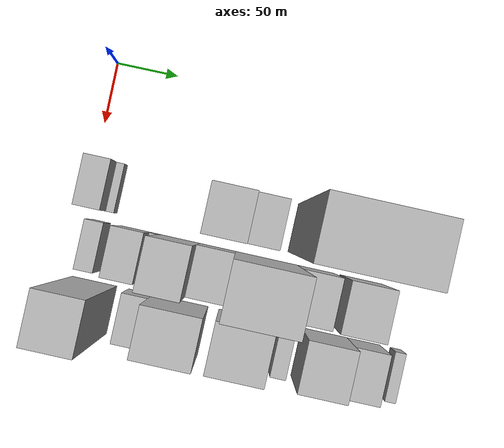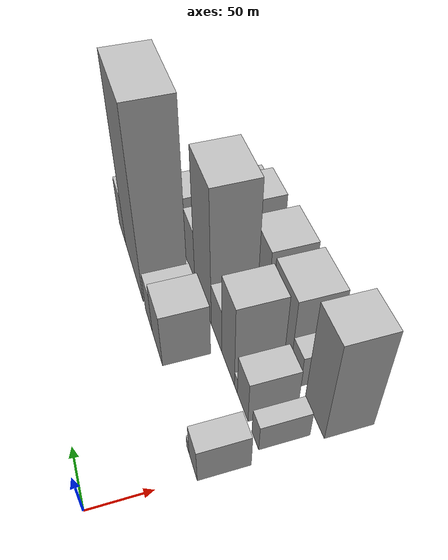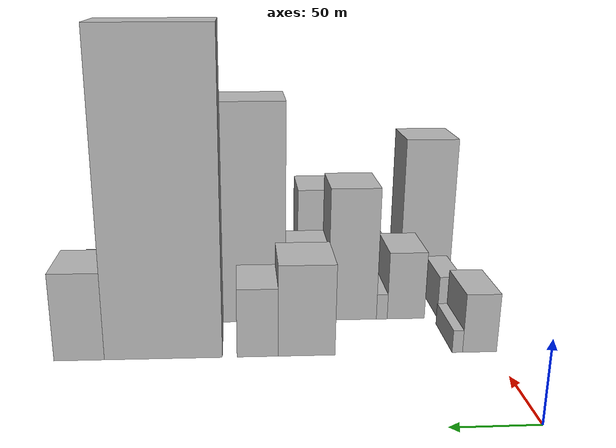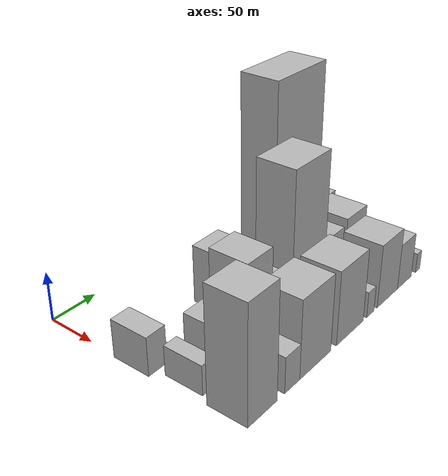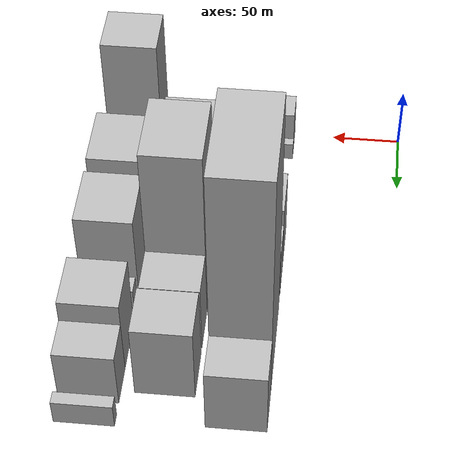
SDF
<sdf version="1.6">
 <world name="default">
  <model name="building_14">
   <static>1</static>
   <pose>100.0000 8.6215 0 0.000000 0.000000 0.000000</pose>
   <link name="link">
    <pose>0 0 19.50 0 0 0</pose>
    <collision name="collision"><geometry><box><size>40.0000 21.5228 39.0000</size></box></geometry></collision>
    <visual name="visual">
     <cast_shadows>0</cast_shadows>
     <geometry><box><size>40.0000 21.5228 39.0000</size></box></geometry>
     <material>
      <script>
       <uri>model://HANNAS_wall/materials/scripts</uri>
       <uri>model://HANNAS_wall/materials/textures</uri>
       <name>vrc/HANNAS_wall</name>
      </script>
     </material>
    </visual>
   </link>
  </model>
  <model name="building_15">
   <static>1</static>
   <pose>100.0000 22.6645 0 0.000000 0.000000 0.000000</pose>
   <link name="link">
    <pose>0 0 7.50 0 0 0</pose>
    <collision name="collision"><geometry><box><size>40.0000 6.5633 15.0000</size></box></geometry></collision>
    <visual name="visual">
     <cast_shadows>0</cast_shadows>
     <geometry><box><size>40.0000 6.5633 15.0000</size></box></geometry>
     <material>
      <script>
       <uri>model://HANNAS_wall/materials/scripts</uri>
       <uri>model://HANNAS_wall/materials/textures</uri>
       <name>vrc/HANNAS_wall</name>
      </script>
     </material>
    </visual>
   </link>
  </model>
  <model name="building_16">
   <static>1</static>
   <pose>100.0000 116.9736 0 0.000000 0.000000 0.000000</pose>
   <link name="link">
    <pose>0 0 30.00 0 0 0</pose>
    <collision name="collision"><geometry><box><size>40.0000 35.3516 60.0000</size></box></geometry></collision>
    <visual name="visual">
     <cast_shadows>0</cast_shadows>
     <geometry><box><size>40.0000 35.3516 60.0000</size></box></geometry>
     <material>
      <script>
       <uri>model://HANNAS_wall/materials/scripts</uri>
       <uri>model://HANNAS_wall/materials/textures</uri>
       <name>vrc/HANNAS_wall</name>
      </script>
     </material>
    </visual>
   </link>
  </model>
  <model name="building_17">
   <static>1</static>
   <pose>100.0000 147.3279 0 0.000000 0.000000 0.000000</pose>
   <link name="link">
    <pose>0 0 22.50 0 0 0</pose>
    <collision name="collision"><geometry><box><size>40.0000 25.3570 45.0000</size></box></geometry></collision>
    <visual name="visual">
     <cast_shadows>0</cast_shadows>
     <geometry><box><size>40.0000 25.3570 45.0000</size></box></geometry>
     <material>
      <script>
       <uri>model://HANNAS_wall/materials/scripts</uri>
       <uri>model://HANNAS_wall/materials/textures</uri>
       <name>vrc/HANNAS_wall</name>
      </script>
     </material>
    </visual>
   </link>
  </model>
  <model name="building_18">
   <static>1</static>
   <pose>100.0000 205.0709 0 0.000000 0.000000 0.000000</pose>
   <link name="link">
    <pose>0 0 100.50 0 0 0</pose>
    <collision name="collision"><geometry><box><size>40.0000 72.1291 201.0000</size></box></geometry></collision>
    <visual name="visual">
     <cast_shadows>0</cast_shadows>
     <geometry><box><size>40.0000 72.1291 201.0000</size></box></geometry>
     <material>
      <script>
       <uri>model://HANNAS_wall/materials/scripts</uri>
       <uri>model://HANNAS_wall/materials/textures</uri>
       <name>vrc/HANNAS_wall</name>
      </script>
     </material>
    </visual>
   </link>
  </model>
  <model name="building_19">
   <static>1</static>
   <pose>100.0000 256.4141 0 0.000000 0.000000 0.000000</pose>
   <link name="link">
    <pose>0 0 28.50 0 0 0</pose>
    <collision name="collision"><geometry><box><size>40.0000 30.5573 57.0000</size></box></geometry></collision>
    <visual name="visual">
     <cast_shadows>0</cast_shadows>
     <geometry><box><size>40.0000 30.5573 57.0000</size></box></geometry>
     <material>
      <script>
       <uri>model://HANNAS_wall/materials/scripts</uri>
       <uri>model://HANNAS_wall/materials/textures</uri>
       <name>vrc/HANNAS_wall</name>
      </script>
     </material>
    </visual>
   </link>
  </model>
  <model name="building_44">
   <static>1</static>
   <pose>149.0000 15.0906 0 0.000000 0.000000 0.000000</pose>
   <link name="link">
    <pose>0 0 15.00 0 0 0</pose>
    <collision name="collision"><geometry><box><size>40.0000 15.2440 30.0000</size></box></geometry></collision>
    <visual name="visual">
     <cast_shadows>0</cast_shadows>
     <geometry><box><size>40.0000 15.2440 30.0000</size></box></geometry>
     <material>
      <script>
       <uri>model://HANNAS_wall/materials/scripts</uri>
       <uri>model://HANNAS_wall/materials/textures</uri>
       <name>vrc/HANNAS_wall</name>
      </script>
     </material>
    </visual>
   </link>
  </model>
  <model name="building_45">
   <static>1</static>
   <pose>149.0000 44.5261 0 0.000000 0.000000 0.000000</pose>
   <link name="link">
    <pose>0 0 24.00 0 0 0</pose>
    <collision name="collision"><geometry><box><size>40.0000 25.6268 48.0000</size></box></geometry></collision>
    <visual name="visual">
     <cast_shadows>0</cast_shadows>
     <geometry><box><size>40.0000 25.6268 48.0000</size></box></geometry>
     <material>
      <script>
       <uri>model://HANNAS_wall/materials/scripts</uri>
       <uri>model://HANNAS_wall/materials/textures</uri>
       <name>vrc/HANNAS_wall</name>
      </script>
     </material>
    </visual>
   </link>
  </model>
  <model name="building_46">
   <static>1</static>
   <pose>149.0000 61.0652 0 0.000000 0.000000 0.000000</pose>
   <link name="link">
    <pose>0 0 9.00 0 0 0</pose>
    <collision name="collision"><geometry><box><size>40.0000 7.4515 18.0000</size></box></geometry></collision>
    <visual name="visual">
     <cast_shadows>0</cast_shadows>
     <geometry><box><size>40.0000 7.4515 18.0000</size></box></geometry>
     <material>
      <script>
       <uri>model://HANNAS_wall/materials/scripts</uri>
       <uri>model://HANNAS_wall/materials/textures</uri>
       <name>vrc/HANNAS_wall</name>
      </script>
     </material>
    </visual>
   </link>
  </model>
  <model name="building_47">
   <static>1</static>
   <pose>149.0000 81.3213 0 0.000000 0.000000 0.000000</pose>
   <link name="link">
    <pose>0 0 46.50 0 0 0</pose>
    <collision name="collision"><geometry><box><size>40.0000 33.0606 93.0000</size></box></geometry></collision>
    <visual name="visual">
     <cast_shadows>0</cast_shadows>
     <geometry><box><size>40.0000 33.0606 93.0000</size></box></geometry>
     <material>
      <script>
       <uri>model://HANNAS_wall/materials/scripts</uri>
       <uri>model://HANNAS_wall/materials/textures</uri>
       <name>vrc/HANNAS_wall</name>
      </script>
     </material>
    </visual>
   </link>
  </model>
  <model name="building_48">
   <static>1</static>
   <pose>149.0000 112.6067 0 0.000000 0.000000 0.000000</pose>
   <link name="link">
    <pose>0 0 25.50 0 0 0</pose>
    <collision name="collision"><geometry><box><size>40.0000 29.5102 51.0000</size></box></geometry></collision>
    <visual name="visual">
     <cast_shadows>0</cast_shadows>
     <geometry><box><size>40.0000 29.5102 51.0000</size></box></geometry>
     <material>
      <script>
       <uri>model://HANNAS_wall/materials/scripts</uri>
       <uri>model://HANNAS_wall/materials/textures</uri>
       <name>vrc/HANNAS_wall</name>
      </script>
     </material>
    </visual>
   </link>
  </model>
  <model name="building_49">
   <static>1</static>
   <pose>149.0000 152.9877 0 0.000000 0.000000 0.000000</pose>
   <link name="link">
    <pose>0 0 75.00 0 0 0</pose>
    <collision name="collision"><geometry><box><size>40.0000 51.2518 150.0000</size></box></geometry></collision>
    <visual name="visual">
     <cast_shadows>0</cast_shadows>
     <geometry><box><size>40.0000 51.2518 150.0000</size></box></geometry>
     <material>
      <script>
       <uri>model://HANNAS_wall/materials/scripts</uri>
       <uri>model://HANNAS_wall/materials/textures</uri>
       <name>vrc/HANNAS_wall</name>
      </script>
     </material>
    </visual>
   </link>
  </model>
  <model name="building_50">
   <static>1</static>
   <pose>149.0000 194.1314 0 0.000000 0.000000 0.000000</pose>
   <link name="link">
    <pose>0 0 30.00 0 0 0</pose>
    <collision name="collision"><geometry><box><size>40.0000 31.0356 60.0000</size></box></geometry></collision>
    <visual name="visual">
     <cast_shadows>0</cast_shadows>
     <geometry><box><size>40.0000 31.0356 60.0000</size></box></geometry>
     <material>
      <script>
       <uri>model://HANNAS_wall/materials/scripts</uri>
       <uri>model://HANNAS_wall/materials/textures</uri>
       <name>vrc/HANNAS_wall</name>
      </script>
     </material>
    </visual>
   </link>
  </model>
  <model name="building_51">
   <static>1</static>
   <pose>149.0000 232.0259 0 0.000000 0.000000 0.000000</pose>
   <link name="link">
    <pose>0 0 33.00 0 0 0</pose>
    <collision name="collision"><geometry><box><size>40.0000 34.7534 66.0000</size></box></geometry></collision>
    <visual name="visual">
     <cast_shadows>0</cast_shadows>
     <geometry><box><size>40.0000 34.7534 66.0000</size></box></geometry>
     <material>
      <script>
       <uri>model://HANNAS_wall/materials/scripts</uri>
       <uri>model://HANNAS_wall/materials/textures</uri>
       <name>vrc/HANNAS_wall</name>
      </script>
     </material>
    </visual>
   </link>
  </model>
  <model name="building_75">
   <static>1</static>
   <pose>198.0000 20.3163 0 0.000000 0.000000 0.000000</pose>
   <link name="link">
    <pose>0 0 57.00 0 0 0</pose>
    <collision name="collision"><geometry><box><size>40.0000 37.2187 114.0000</size></box></geometry></collision>
    <visual name="visual">
     <cast_shadows>0</cast_shadows>
     <geometry><box><size>40.0000 37.2187 114.0000</size></box></geometry>
     <material>
      <script>
       <uri>model://HANNAS_wall/materials/scripts</uri>
       <uri>model://HANNAS_wall/materials/textures</uri>
       <name>vrc/HANNAS_wall</name>
      </script>
     </material>
    </visual>
   </link>
  </model>
  <model name="building_76">
   <static>1</static>
   <pose>198.0000 59.2380 0 0.000000 0.000000 0.000000</pose>
   <link name="link">
    <pose>0 0 18.00 0 0 0</pose>
    <collision name="collision"><geometry><box><size>40.0000 20.6248 36.0000</size></box></geometry></collision>
    <visual name="visual">
     <cast_shadows>0</cast_shadows>
     <geometry><box><size>40.0000 20.6248 36.0000</size></box></geometry>
     <material>
      <script>
       <uri>model://HANNAS_wall/materials/scripts</uri>
       <uri>model://HANNAS_wall/materials/textures</uri>
       <name>vrc/HANNAS_wall</name>
      </script>
     </material>
    </visual>
   </link>
  </model>
  <model name="building_77">
   <static>1</static>
   <pose>198.0000 92.4446 0 0.000000 0.000000 0.000000</pose>
   <link name="link">
    <pose>0 0 39.00 0 0 0</pose>
    <collision name="collision"><geometry><box><size>40.0000 45.7883 78.0000</size></box></geometry></collision>
    <visual name="visual">
     <cast_shadows>0</cast_shadows>
     <geometry><box><size>40.0000 45.7883 78.0000</size></box></geometry>
     <material>
      <script>
       <uri>model://HANNAS_wall/materials/scripts</uri>
       <uri>model://HANNAS_wall/materials/textures</uri>
       <name>vrc/HANNAS_wall</name>
      </script>
     </material>
    </visual>
   </link>
  </model>
  <model name="building_78">
   <static>1</static>
   <pose>198.0000 146.4925 0 0.000000 0.000000 0.000000</pose>
   <link name="link">
    <pose>0 0 37.50 0 0 0</pose>
    <collision name="collision"><geometry><box><size>40.0000 44.3075 75.0000</size></box></geometry></collision>
    <visual name="visual">
     <cast_shadows>0</cast_shadows>
     <geometry><box><size>40.0000 44.3075 75.0000</size></box></geometry>
     <material>
      <script>
       <uri>model://HANNAS_wall/materials/scripts</uri>
       <uri>model://HANNAS_wall/materials/textures</uri>
       <name>vrc/HANNAS_wall</name>
      </script>
     </material>
    </visual>
   </link>
  </model>
  <model name="building_79">
   <static>1</static>
   <pose>198.0000 181.0132 0 0.000000 0.000000 0.000000</pose>
   <link name="link">
    <pose>0 0 13.50 0 0 0</pose>
    <collision name="collision"><geometry><box><size>40.0000 12.7341 27.0000</size></box></geometry></collision>
    <visual name="visual">
     <cast_shadows>0</cast_shadows>
     <geometry><box><size>40.0000 12.7341 27.0000</size></box></geometry>
     <material>
      <script>
       <uri>model://HANNAS_wall/materials/scripts</uri>
       <uri>model://HANNAS_wall/materials/textures</uri>
       <name>vrc/HANNAS_wall</name>
      </script>
     </material>
    </visual>
   </link>
  </model>
  <model name="building_80">
   <static>1</static>
   <pose>198.0000 212.3127 0 0.000000 0.000000 0.000000</pose>
   <link name="link">
    <pose>0 0 33.00 0 0 0</pose>
    <collision name="collision"><geometry><box><size>40.0000 37.8649 66.0000</size></box></geometry></collision>
    <visual name="visual">
     <cast_shadows>0</cast_shadows>
     <geometry><box><size>40.0000 37.8649 66.0000</size></box></geometry>
     <material>
      <script>
       <uri>model://HANNAS_wall/materials/scripts</uri>
       <uri>model://HANNAS_wall/materials/textures</uri>
       <name>vrc/HANNAS_wall</name>
      </script>
     </material>
    </visual>
   </link>
  </model>
  <model name="building_81">
   <static>1</static>
   <pose>198.0000 244.9459 0 0.000000 0.000000 0.000000</pose>
   <link name="link">
    <pose>0 0 24.00 0 0 0</pose>
    <collision name="collision"><geometry><box><size>40.0000 27.4015 48.0000</size></box></geometry></collision>
    <visual name="visual">
     <cast_shadows>0</cast_shadows>
     <geometry><box><size>40.0000 27.4015 48.0000</size></box></geometry>
     <material>
      <script>
       <uri>model://HANNAS_wall/materials/scripts</uri>
       <uri>model://HANNAS_wall/materials/textures</uri>
       <name>vrc/HANNAS_wall</name>
      </script>
     </material>
    </visual>
   </link>
  </model>
  <model name="building_82">
   <static>1</static>
   <pose>198.0000 272.0368 0 0.000000 0.000000 0.000000</pose>
   <link name="link">
    <pose>0 0 10.50 0 0 0</pose>
    <collision name="collision"><geometry><box><size>40.0000 8.7801 21.0000</size></box></geometry></collision>
    <visual name="visual">
     <cast_shadows>0</cast_shadows>
     <geometry><box><size>40.0000 8.7801 21.0000</size></box></geometry>
     <material>
      <script>
       <uri>model://HANNAS_wall/materials/scripts</uri>
       <uri>model://HANNAS_wall/materials/textures</uri>
       <name>vrc/HANNAS_wall</name>
      </script>
     </material>
    </visual>
   </link>
  </model>
 </world>
</sdf>
